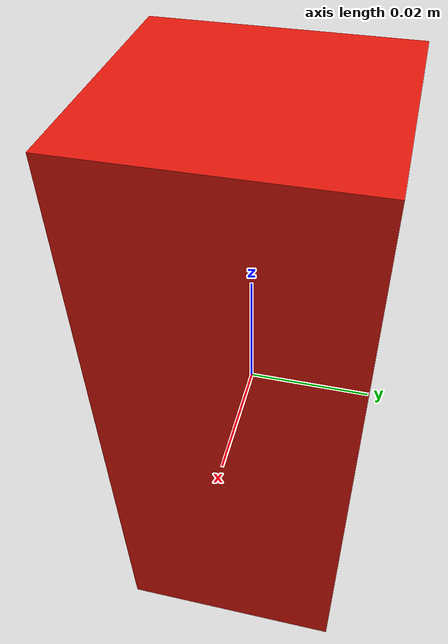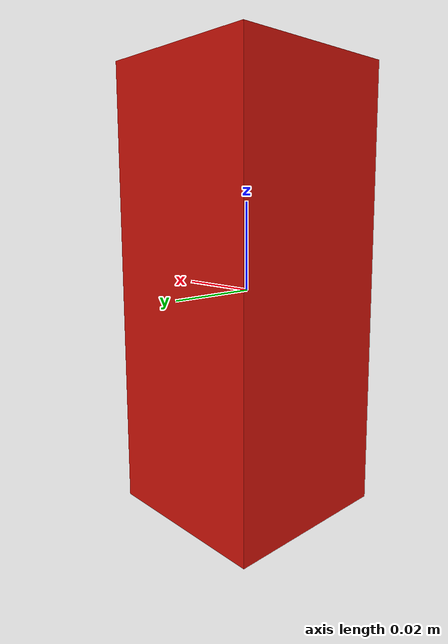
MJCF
<mujoco model="square-peg">
  <asset>
    <material name="peg_red" rgba="0.85 0.08 0.04 1"/>
  </asset>
  <worldbody>
    <body>
      <body name="object">
        <geom name="body" type="box" size="0.02 0.02 0.05" group="0"
              material="peg_red" density="250" friction="3.0 0.02 0.002"
              solimp="0.95 0.99 0.001" solref="0.01 1"/>
        <site name="center_site" pos="0 0 0" size="0.003" rgba="0 0 0 0"/>
        <site name="bottom_site" pos="0 0 -0.05" size="0.003" rgba="0 0 0 0"/>
        <site name="top_site" pos="0 0 0.05" size="0.003" rgba="0 0 0 0"/>
        <site name="horizontal_radius_site" pos="0.02 0.02 0" size="0.003" rgba="0 0 0 0"/>
      </body>
    </body>
  </worldbody>
</mujoco>
